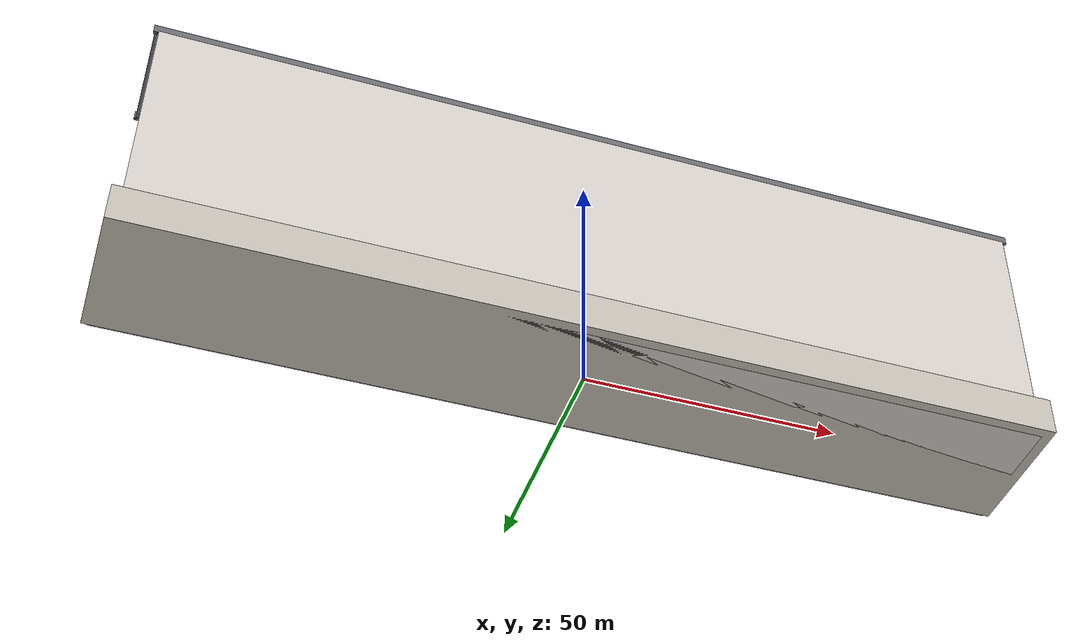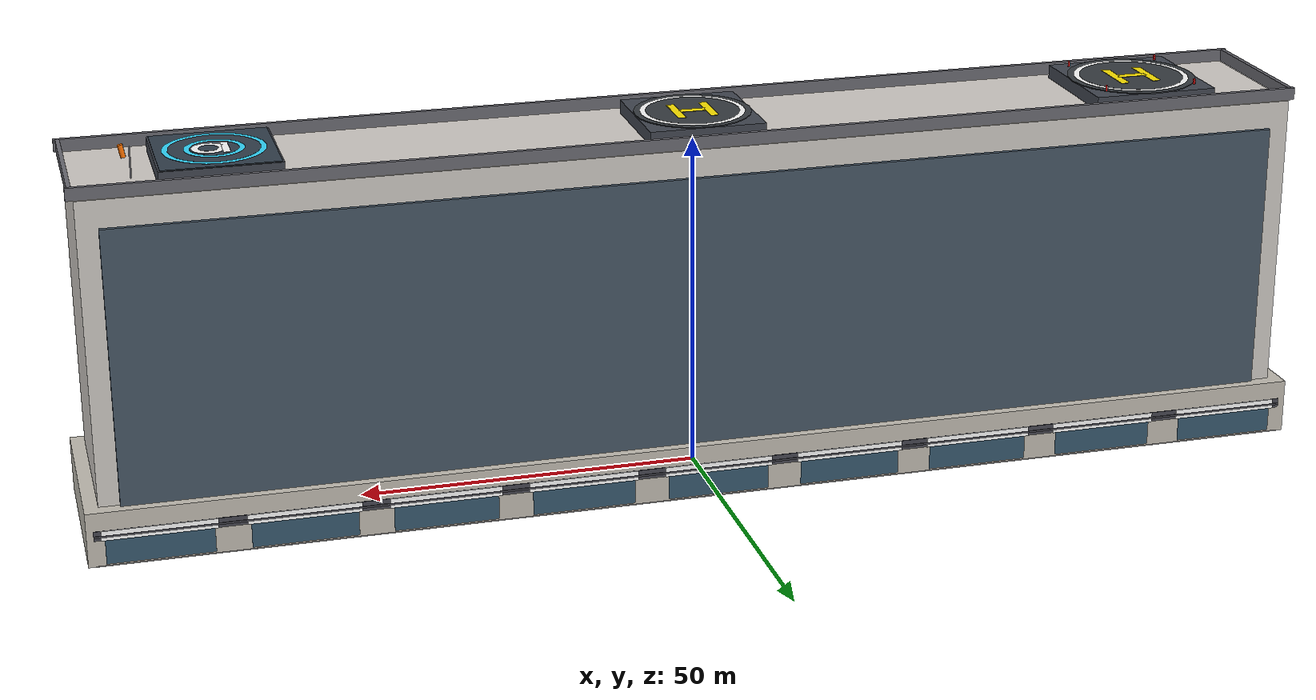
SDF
<?xml version="1.0" ?>
<sdf version="1.8">
  <model name="guangfu_south_strip_east">
    <static>true</static>
    <link name="strip_link">
      <collision name="podium_col"><pose>0 0 4.0 0 0 0</pose><geometry><box><size>180.0 28.0 8.0</size></box></geometry></collision>
      <collision name="tower_col"><pose>0 0 26.0 0 0 0</pose><geometry><box><size>176.0 24.0 52.0</size></box></geometry></collision>
      <visual name="podium_vis"><pose>0 0 4.0 0 0 0</pose><geometry><box><size>180.0 28.0 8.0</size></box></geometry><material><ambient>0.70 0.68 0.65 1</ambient><diffuse>0.76 0.74 0.70 1</diffuse></material></visual>
      <!-- 1F 連續騎樓走廊 (Y = +12.5m facing Guangfu Rd) -->
      <visual name="arcade_floor"><pose>0 12.5 0.08 0 0 0</pose><geometry><box><size>178.0 3.5 0.02</size></box></geometry><material><ambient>0.60 0.58 0.56 1</ambient><diffuse>0.68 0.66 0.64 1</diffuse></material></visual>
      <visual name="arcade_ceiling"><pose>0 12.5 4.5 0 0 0</pose><geometry><box><size>178.0 3.5 0.25</size></box></geometry><material><ambient>0.25 0.25 0.28 1</ambient><diffuse>0.30 0.30 0.34 1</diffuse></material></visual>
      <!-- ==================== 光復路一段 9 間知名品牌獨立店招長廊 (9 Individual Exact 11.43:1 Ratio Signboards) ==================== -->
      <!-- 騎樓簷口深色金屬邊框樑 (Architrave Backing Beam) -->
      <visual name="arcade_fascia_architrave">
        <pose>0 14.06 4.6 0 0 0</pose>
        <geometry><box><size>178.0 0.08 1.4</size></box></geometry>
        <material><ambient>0.22 0.22 0.25 1</ambient><diffuse>0.28 0.28 0.32 1</diffuse></material>
      </visual>

      <!-- 店招 0: 玉山銀行 E.SUN BANK (-80m) -->
      <visual name="shop_sign_0_esun">
        <pose>-80.0 14.15 4.6 0 0 0</pose>
        <geometry><box><size>16.0 0.16 1.4</size></box></geometry>
        <material>
          <diffuse>1 1 1 1</diffuse>
          <emissive>0.45 0.45 0.45 1</emissive>
          <pbr><metal><albedo_map>model://guangfu_south_strip_east/materials/textures/sign_esun.png</albedo_map><roughness>0.2</roughness><metalness>0.05</metalness></metal></pbr>
        </material>
      </visual>

      <!-- 店招 1: 大樹連鎖藥局 (-60m) -->
      <visual name="shop_sign_1_great_tree">
        <pose>-60.0 14.15 4.6 0 0 0</pose>
        <geometry><box><size>16.0 0.16 1.4</size></box></geometry>
        <material>
          <diffuse>1 1 1 1</diffuse>
          <emissive>0.45 0.45 0.45 1</emissive>
          <pbr><metal><albedo_map>model://guangfu_south_strip_east/materials/textures/sign_great_tree.png</albedo_map><roughness>0.2</roughness><metalness>0.05</metalness></metal></pbr>
        </material>
      </visual>

      <!-- 店招 2: 王品 陶板屋 (-40m) -->
      <visual name="shop_sign_2_tokiya">
        <pose>-40.0 14.15 4.6 0 0 0</pose>
        <geometry><box><size>16.0 0.16 1.4</size></box></geometry>
        <material>
          <diffuse>1 1 1 1</diffuse>
          <emissive>0.45 0.45 0.45 1</emissive>
          <pbr><metal><albedo_map>model://guangfu_south_strip_east/materials/textures/sign_tokiya.png</albedo_map><roughness>0.2</roughness><metalness>0.05</metalness></metal></pbr>
        </material>
      </visual>

      <!-- 店招 3: 50嵐 經典手搖飲 (-20m) -->
      <visual name="shop_sign_3_50lan">
        <pose>-20.0 14.15 4.6 0 0 0</pose>
        <geometry><box><size>16.0 0.16 1.4</size></box></geometry>
        <material>
          <diffuse>1 1 1 1</diffuse>
          <emissive>0.45 0.45 0.45 1</emissive>
          <pbr><metal><albedo_map>model://guangfu_south_strip_east/materials/textures/sign_50lan.png</albedo_map><roughness>0.2</roughness><metalness>0.05</metalness></metal></pbr>
        </material>
      </visual>

      <!-- 店招 4: 春水堂 人文茶館 (0m, 正中軸線) -->
      <visual name="shop_sign_4_chunshuitang">
        <pose>0.0 14.15 4.6 0 0 0</pose>
        <geometry><box><size>16.0 0.16 1.4</size></box></geometry>
        <material>
          <diffuse>1 1 1 1</diffuse>
          <emissive>0.45 0.45 0.45 1</emissive>
          <pbr><metal><albedo_map>model://guangfu_south_strip_east/materials/textures/sign_chunshuitang.png</albedo_map><roughness>0.2</roughness><metalness>0.05</metalness></metal></pbr>
        </material>
      </visual>

      <!-- 店招 5: 星展銀行 DBS BANK (+20m) -->
      <visual name="shop_sign_5_dbs">
        <pose>20.0 14.15 4.6 0 0 0</pose>
        <geometry><box><size>16.0 0.16 1.4</size></box></geometry>
        <material>
          <diffuse>1 1 1 1</diffuse>
          <emissive>0.45 0.45 0.45 1</emissive>
          <pbr><metal><albedo_map>model://guangfu_south_strip_east/materials/textures/sign_dbs.png</albedo_map><roughness>0.2</roughness><metalness>0.05</metalness></metal></pbr>
        </material>
      </visual>

      <!-- 店招 6: 安永鮮物 (+40m) -->
      <visual name="shop_sign_6_anyoung">
        <pose>40.0 14.15 4.6 0 0 0</pose>
        <geometry><box><size>16.0 0.16 1.4</size></box></geometry>
        <material>
          <diffuse>1 1 1 1</diffuse>
          <emissive>0.45 0.45 0.45 1</emissive>
          <pbr><metal><albedo_map>model://guangfu_south_strip_east/materials/textures/sign_anyoung.png</albedo_map><roughness>0.2</roughness><metalness>0.05</metalness></metal></pbr>
        </material>
      </visual>

      <!-- 店招 7: 台安聯合診所 (+60m) -->
      <visual name="shop_sign_7_taian">
        <pose>60.0 14.15 4.6 0 0 0</pose>
        <geometry><box><size>16.0 0.16 1.4</size></box></geometry>
        <material>
          <diffuse>1 1 1 1</diffuse>
          <emissive>0.45 0.45 0.45 1</emissive>
          <pbr><metal><albedo_map>model://guangfu_south_strip_east/materials/textures/sign_taian.png</albedo_map><roughness>0.2</roughness><metalness>0.05</metalness></metal></pbr>
        </material>
      </visual>

      <!-- 店招 8: 屈臣氏 Watsons (+80m) -->
      <visual name="shop_sign_8_watsons">
        <pose>80.0 14.15 4.6 0 0 0</pose>
        <geometry><box><size>16.0 0.16 1.4</size></box></geometry>
        <material>
          <diffuse>1 1 1 1</diffuse>
          <emissive>0.45 0.45 0.45 1</emissive>
          <pbr><metal><albedo_map>model://guangfu_south_strip_east/materials/textures/sign_watsons.png</albedo_map><roughness>0.2</roughness><metalness>0.05</metalness></metal></pbr>
        </material>
      </visual>
      <visual name="shop_glass_0"><pose>-80.0 14.05 2.2 0 0 0</pose><geometry><box><size>15.0 0.1 3.8</size></box></geometry><material><ambient>0.15 0.25 0.35 0.88</ambient><diffuse>0.20 0.35 0.45 0.88</diffuse><specular>0.9 0.95 1.0 1</specular></material></visual>
      <visual name="shop_glass_1"><pose>-60.0 14.05 2.2 0 0 0</pose><geometry><box><size>15.0 0.1 3.8</size></box></geometry><material><ambient>0.15 0.25 0.35 0.88</ambient><diffuse>0.20 0.35 0.45 0.88</diffuse><specular>0.9 0.95 1.0 1</specular></material></visual>
      <visual name="shop_glass_2"><pose>-40.0 14.05 2.2 0 0 0</pose><geometry><box><size>15.0 0.1 3.8</size></box></geometry><material><ambient>0.15 0.25 0.35 0.88</ambient><diffuse>0.20 0.35 0.45 0.88</diffuse><specular>0.9 0.95 1.0 1</specular></material></visual>
      <visual name="shop_glass_3"><pose>-20.0 14.05 2.2 0 0 0</pose><geometry><box><size>15.0 0.1 3.8</size></box></geometry><material><ambient>0.15 0.25 0.35 0.88</ambient><diffuse>0.20 0.35 0.45 0.88</diffuse><specular>0.9 0.95 1.0 1</specular></material></visual>
      <visual name="shop_glass_4"><pose>0.0 14.05 2.2 0 0 0</pose><geometry><box><size>15.0 0.1 3.8</size></box></geometry><material><ambient>0.15 0.25 0.35 0.88</ambient><diffuse>0.20 0.35 0.45 0.88</diffuse><specular>0.9 0.95 1.0 1</specular></material></visual>
      <visual name="shop_glass_5"><pose>20.0 14.05 2.2 0 0 0</pose><geometry><box><size>15.0 0.1 3.8</size></box></geometry><material><ambient>0.15 0.25 0.35 0.88</ambient><diffuse>0.20 0.35 0.45 0.88</diffuse><specular>0.9 0.95 1.0 1</specular></material></visual>
      <visual name="shop_glass_6"><pose>40.0 14.05 2.2 0 0 0</pose><geometry><box><size>15.0 0.1 3.8</size></box></geometry><material><ambient>0.15 0.25 0.35 0.88</ambient><diffuse>0.20 0.35 0.45 0.88</diffuse><specular>0.9 0.95 1.0 1</specular></material></visual>
      <visual name="shop_glass_7"><pose>60.0 14.05 2.2 0 0 0</pose><geometry><box><size>15.0 0.1 3.8</size></box></geometry><material><ambient>0.15 0.25 0.35 0.88</ambient><diffuse>0.20 0.35 0.45 0.88</diffuse><specular>0.9 0.95 1.0 1</specular></material></visual>
      <visual name="shop_glass_8"><pose>80.0 14.05 2.2 0 0 0</pose><geometry><box><size>15.0 0.1 3.8</size></box></geometry><material><ambient>0.15 0.25 0.35 0.88</ambient><diffuse>0.20 0.35 0.45 0.88</diffuse><specular>0.9 0.95 1.0 1</specular></material></visual>
      <!-- 主塔樓立面 (16F, 高 52.0m) -->
      <visual name="tower_main_vis"><pose>0 0 26.0 0 0 0</pose><geometry><box><size>176.0 24.0 52.0</size></box></geometry><material><ambient>0.76 0.74 0.72 1</ambient><diffuse>0.82 0.80 0.78 1</diffuse></material></visual>
      <visual name="balconies_front"><pose>0 12.2 28.0 0 0 0</pose><geometry><box><size>170.0 0.8 40.0</size></box></geometry><material><ambient>0.22 0.26 0.32 0.9</ambient><diffuse>0.28 0.34 0.40 0.9</diffuse></material></visual>
      <!-- 屋頂四周防墜女兒牆 (Perimeter Parapet Walls - 內部中空無覆蓋) -->
      <visual name="parapet_n"><pose>0 11.4 52.9 0 0 0</pose><geometry><box><size>178.0 0.6 1.8</size></box></geometry><material><ambient>0.35 0.35 0.38 1</ambient><diffuse>0.42 0.42 0.45 1</diffuse></material></visual>
      <visual name="parapet_s"><pose>0 -11.4 52.9 0 0 0</pose><geometry><box><size>178.0 0.6 1.8</size></box></geometry><material><ambient>0.35 0.35 0.38 1</ambient><diffuse>0.42 0.42 0.45 1</diffuse></material></visual>
      <visual name="parapet_w"><pose>-88.4 0 52.9 0 0 0</pose><geometry><box><size>0.6 22.8 1.8</size></box></geometry><material><ambient>0.35 0.35 0.38 1</ambient><diffuse>0.42 0.42 0.45 1</diffuse></material></visual>
      <visual name="parapet_e"><pose>88.4 0 52.9 0 0 0</pose><geometry><box><size>0.6 22.8 1.8</size></box></geometry><material><ambient>0.35 0.35 0.38 1</ambient><diffuse>0.42 0.42 0.45 1</diffuse></material></visual>

      <!-- ==================== 頂樓三大直昇機與無人機垂直起降停機坪 (高架起降平台 Z=54.2m) ==================== -->
      <!-- [Helipad 1: 西側重型緊急救援與商務直昇機坪 H-1, 正對關新路南端路衝天際線] -->
      <!-- 1. 鋼結構挑高高架停機平台基座 (Elevated Flight Deck Structure, Z=54.0m) -->
      <visual name="helipad1_support"><pose>-68.0 0 53.0 0 0 0</pose><geometry><box><size>18.5 18.5 2.0</size></box></geometry><material><ambient>0.2 0.22 0.25 1</ambient><diffuse>0.26 0.28 0.32 1</diffuse></material></visual>
      <visual name="helipad1_deck"><pose>-68.0 0 54.05 0 0 0</pose><geometry><cylinder><radius>9.5</radius><length>0.15</length></cylinder></geometry><material><ambient>0.18 0.20 0.22 1</ambient><diffuse>0.22 0.24 0.26 1</diffuse><specular>0.5 0.5 0.5 1</specular></material></visual>
      <!-- 白色外圈著陸引導環 (White Perimeter Circle) -->
      <visual name="helipad1_ring"><pose>-68.0 0 54.14 0 0 0</pose><geometry><cylinder><radius>8.5</radius><length>0.02</length></cylinder></geometry><material><ambient>0.95 0.95 0.95 1</ambient><diffuse>1 1 1 1</diffuse><emissive>0.3 0.3 0.3 1</emissive></material></visual>
      <visual name="helipad1_ring_cut"><pose>-68.0 0 54.15 0 0 0</pose><geometry><cylinder><radius>7.7</radius><length>0.025</length></cylinder></geometry><material><ambient>0.18 0.20 0.22 1</ambient><diffuse>0.22 0.24 0.26 1</diffuse></material></visual>

      <!-- 🌟 超醒目民航標準自體發光黃色「H」字樣 (Giant Luminous Yellow H, 高達 8.0 公尺) 🌟 -->
      <visual name="helipad1_h_left"><pose>-70.5 0 54.18 0 0 0</pose><geometry><box><size>1.3 7.6 0.04</size></box></geometry><material><ambient>1.0 0.85 0.0 1</ambient><diffuse>1.0 0.90 0.0 1</diffuse><emissive>0.7 0.6 0.05 1</emissive></material></visual>
      <visual name="helipad1_h_right"><pose>-65.5 0 54.18 0 0 0</pose><geometry><box><size>1.3 7.6 0.04</size></box></geometry><material><ambient>1.0 0.85 0.0 1</ambient><diffuse>1.0 0.90 0.0 1</diffuse><emissive>0.7 0.6 0.05 1</emissive></material></visual>
      <visual name="helipad1_h_mid"><pose>-68.0 0 54.18 0 0 0</pose><geometry><box><size>4.5 1.3 0.04</size></box></geometry><material><ambient>1.0 0.85 0.0 1</ambient><diffuse>1.0 0.90 0.0 1</diffuse><emissive>0.7 0.6 0.05 1</emissive></material></visual>

      <!-- 停機坪綠色邊界燈與四隅紅色高空障礙警示燈 -->
      <visual name="helipad1_obs_nw"><pose>-75.0 7.0 54.6 0 0 0</pose><geometry><cylinder><radius>0.15</radius><length>0.8</length></cylinder></geometry><material><ambient>0.9 0.1 0.1 1</ambient><diffuse>1.0 0.1 0.1 1</diffuse><emissive>0.8 0.1 0.1 1</emissive></material></visual>
      <visual name="helipad1_obs_ne"><pose>-61.0 7.0 54.6 0 0 0</pose><geometry><cylinder><radius>0.15</radius><length>0.8</length></cylinder></geometry><material><ambient>0.9 0.1 0.1 1</ambient><diffuse>1.0 0.1 0.1 1</diffuse><emissive>0.8 0.1 0.1 1</emissive></material></visual>
      <visual name="helipad1_obs_sw"><pose>-75.0 -7.0 54.6 0 0 0</pose><geometry><cylinder><radius>0.15</radius><length>0.8</length></cylinder></geometry><material><ambient>0.9 0.1 0.1 1</ambient><diffuse>1.0 0.1 0.1 1</diffuse><emissive>0.8 0.1 0.1 1</emissive></material></visual>
      <visual name="helipad1_obs_se"><pose>-61.0 -7.0 54.6 0 0 0</pose><geometry><cylinder><radius>0.15</radius><length>0.8</length></cylinder></geometry><material><ambient>0.9 0.1 0.1 1</ambient><diffuse>1.0 0.1 0.1 1</diffuse><emissive>0.8 0.1 0.1 1</emissive></material></visual>

      <!-- [Helipad 2: 中央公務商務直昇機與 eVTOL 飛行坪 H-2] -->
      <visual name="helipad2_support"><pose>0 0 53.0 0 0 0</pose><geometry><box><size>17.0 17.0 2.0</size></box></geometry><material><ambient>0.2 0.22 0.25 1</ambient><diffuse>0.26 0.28 0.32 1</diffuse></material></visual>
      <visual name="helipad2_deck"><pose>0 0 54.05 0 0 0</pose><geometry><cylinder><radius>8.5</radius><length>0.15</length></cylinder></geometry><material><ambient>0.18 0.20 0.22 1</ambient><diffuse>0.22 0.24 0.26 1</diffuse></material></visual>
      <visual name="helipad2_ring"><pose>0 0 54.14 0 0 0</pose><geometry><cylinder><radius>7.6</radius><length>0.02</length></cylinder></geometry><material><ambient>0.95 0.95 0.95 1</ambient><diffuse>1 1 1 1</diffuse><emissive>0.3 0.3 0.3 1</emissive></material></visual>
      <visual name="helipad2_ring_cut"><pose>0 0 54.15 0 0 0</pose><geometry><cylinder><radius>6.8</radius><length>0.025</length></cylinder></geometry><material><ambient>0.18 0.20 0.22 1</ambient><diffuse>0.22 0.24 0.26 1</diffuse></material></visual>

      <!-- 🌟 中央停機坪超醒目自體發光黃色「H」字樣 🌟 -->
      <visual name="helipad2_h_left"><pose>-2.4 0 54.18 0 0 0</pose><geometry><box><size>1.2 6.8 0.04</size></box></geometry><material><ambient>1.0 0.85 0.0 1</ambient><diffuse>1.0 0.90 0.0 1</diffuse><emissive>0.7 0.6 0.05 1</emissive></material></visual>
      <visual name="helipad2_h_right"><pose>2.4 0 54.18 0 0 0</pose><geometry><box><size>1.2 6.8 0.04</size></box></geometry><material><ambient>1.0 0.85 0.0 1</ambient><diffuse>1.0 0.90 0.0 1</diffuse><emissive>0.7 0.6 0.05 1</emissive></material></visual>
      <visual name="helipad2_h_mid"><pose>0 0 54.18 0 0 0</pose><geometry><box><size>4.0 1.2 0.04</size></box></geometry><material><ambient>1.0 0.85 0.0 1</ambient><diffuse>1.0 0.90 0.0 1</diffuse><emissive>0.7 0.6 0.05 1</emissive></material></visual>

      <!-- [Helipad 3: 東側高科技無人機物流與智慧垂直起降場 D-3] -->
      <visual name="helipad3_support"><pose>68.0 0 53.0 0 0 0</pose><geometry><box><size>17.0 17.0 2.0</size></box></geometry><material><ambient>0.2 0.22 0.25 1</ambient><diffuse>0.26 0.28 0.32 1</diffuse></material></visual>
      <visual name="helipad3_deck"><pose>68.0 0 54.05 0 0 0</pose><geometry><box><size>16.5 16.5 0.15</size></box></geometry><material><ambient>0.16 0.20 0.24 1</ambient><diffuse>0.20 0.25 0.30 1</diffuse></material></visual>
      <!-- 青藍色無人機發光同心圓靶心 (Luminous Cyan Drone Rings) -->
      <visual name="helipad3_ring1"><pose>68.0 0 54.14 0 0 0</pose><geometry><cylinder><radius>7.2</radius><length>0.02</length></cylinder></geometry><material><ambient>0.1 0.7 0.9 1</ambient><diffuse>0.2 0.85 1.0 1</diffuse><emissive>0.5 0.8 1.0 1</emissive></material></visual>
      <visual name="helipad3_ring1_cut"><pose>68.0 0 54.15 0 0 0</pose><geometry><cylinder><radius>6.4</radius><length>0.025</length></cylinder></geometry><material><ambient>0.16 0.20 0.24 1</ambient><diffuse>0.20 0.25 0.30 1</diffuse></material></visual>
      <visual name="helipad3_ring2"><pose>68.0 0 54.16 0 0 0</pose><geometry><cylinder><radius>4.2</radius><length>0.02</length></cylinder></geometry><material><ambient>0.1 0.7 0.9 1</ambient><diffuse>0.2 0.85 1.0 1</diffuse><emissive>0.5 0.8 1.0 1</emissive></material></visual>
      <visual name="helipad3_ring2_cut"><pose>68.0 0 54.17 0 0 0</pose><geometry><cylinder><radius>3.4</radius><length>0.025</length></cylinder></geometry><material><ambient>0.16 0.20 0.24 1</ambient><diffuse>0.20 0.25 0.30 1</diffuse></material></visual>
      <!-- 無人機發光「D」字標識 -->
      <visual name="helipad3_d_stem"><pose>66.5 0 54.20 0 0 0</pose><geometry><box><size>1.0 4.8 0.04</size></box></geometry><material><ambient>0.9 0.95 1 1</ambient><diffuse>1 1 1 1</diffuse><emissive>0.6 0.7 0.9 1</emissive></material></visual>
      <visual name="helipad3_d_loop"><pose>68.8 0 54.20 0 0 0</pose><geometry><cylinder><radius>2.4</radius><length>0.04</length></cylinder></geometry><material><ambient>0.9 0.95 1 1</ambient><diffuse>1 1 1 1</diffuse><emissive>0.6 0.7 0.9 1</emissive></material></visual>
      <visual name="helipad3_d_loop_in"><pose>68.8 0 54.21 0 0 0</pose><geometry><cylinder><radius>1.4</radius><length>0.045</length></cylinder></geometry><material><ambient>0.16 0.20 0.24 1</ambient><diffuse>0.20 0.25 0.30 1</diffuse></material></visual>

      <!-- 高空風向袋立柱 (Aviation Windsock Pole) -->
      <visual name="windsock_pole"><pose>80.0 8.0 55.5 0 0 0</pose><geometry><cylinder><radius>0.1</radius><length>4.5</length></cylinder></geometry><material><ambient>0.8 0.8 0.85 1</ambient><diffuse>0.9 0.9 0.95 1</diffuse></material></visual>
      <visual name="windsock_cone"><pose>81.0 8.0 57.2 0 0.2 0</pose><geometry><cylinder><radius>0.35</radius><length>1.8</length></cylinder></geometry><material><ambient>1 0.4 0 1</ambient><diffuse>1 0.45 0 1</diffuse><emissive>0.4 0.15 0 1</emissive></material></visual>

    </link>
  </model>
</sdf>
